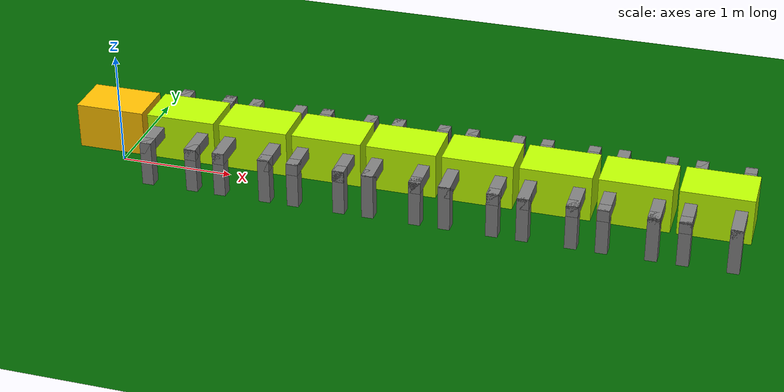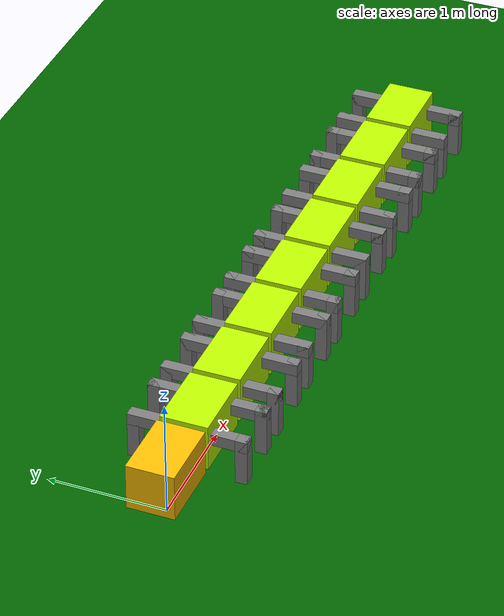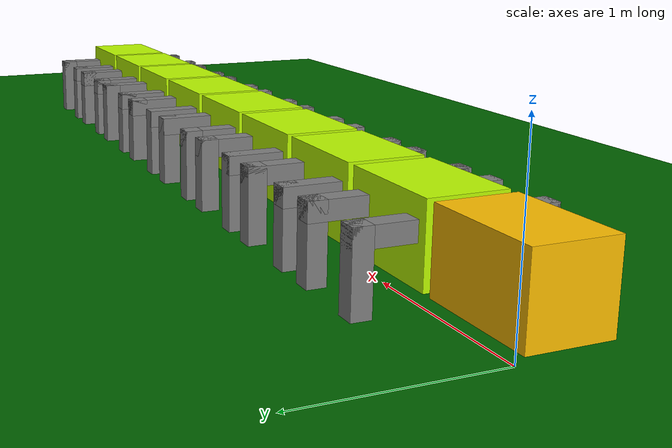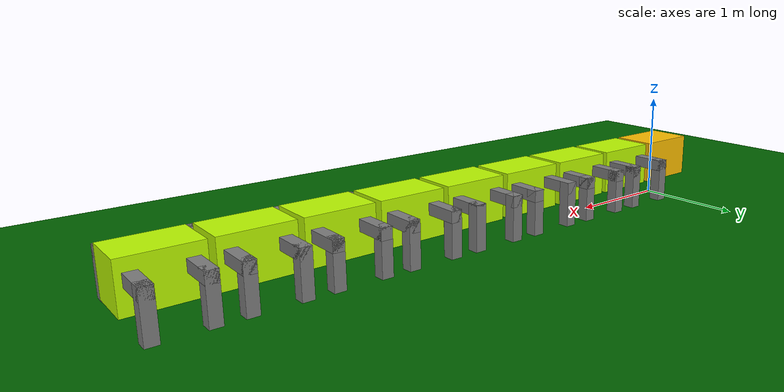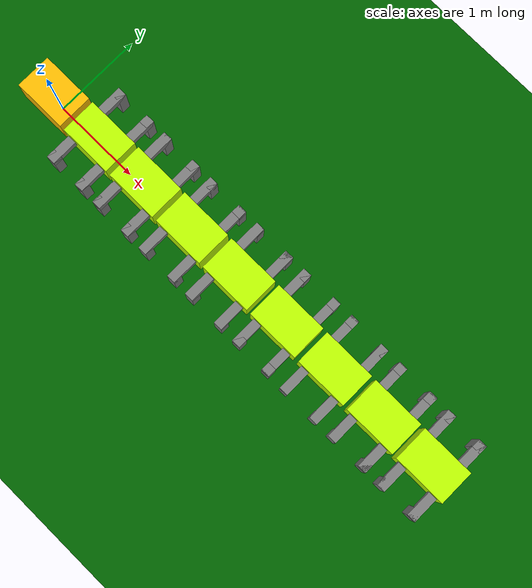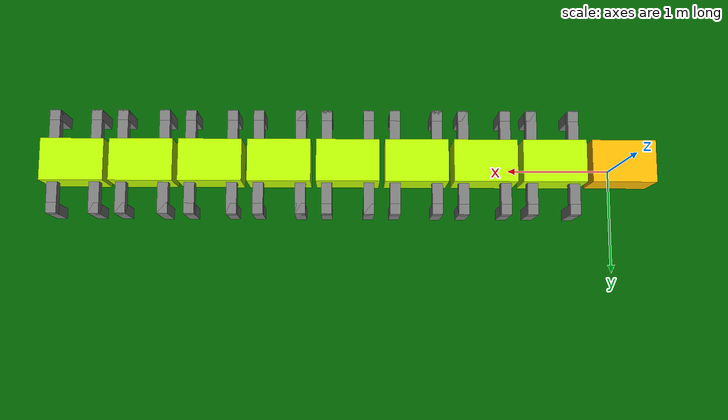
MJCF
<mujoco><option>timestep="0.1"</option><worldbody><light diffuse=".5 .5 .5" dir="0 0 1" pos="0 0 3" /><geom name="floor" rgba="0 .39 0 1" size="100 100 0.1" type="plane" /><body name="head"><freejoint name="root" /><geom name="head" pos="0 0 0.4" rgba="1 .75 0 1" size="0.3 0.2 0.2" type="box" /><body name="body0Body" pos="0.65 0 0.4"><geom rgba="0.75 1 0 1" size="0.3 0.2 0.2" type="box" /><joint axis="0 0 1" limited="true" name="body0Joint" pos="-0.15 0 0" range="-20 20" /><body name="body0leg1"><geom pos="0.2 0.35 0.05" size="0.05 0.15 0.05" type="box" /><joint axis="1 0 0" limited="true" name="body0leg1Hinge" pos="0 0 0.5" range="-10 10" /><geom pos="0.2 0.45 -.1" size="0.05 0.05 0.2" type="box" /></body><body name="body0leg11" /><body name="body0leg2"><geom pos="-0.2 0.35 0.05" size="0.05 0.15 0.05" type="box" /><joint axis="1 0 0" limited="true" name="body0leg2Hinge" pos="0 0 0.5" range="-10 10" /><geom pos="-0.2 0.45 -.1" size="0.05 0.05 0.2" type="box" /></body><body name="body0leg21" /><body name="body0leg3"><geom pos="0.2 -0.35 0.05" size="0.05 0.15 0.05" type="box" /><joint axis="1 0 0" limited="true" name="body0leg3Hinge" pos="0 0 0.5" range="-10 10" /><geom pos="0.2 -0.45 -.1" size="0.05 0.05 0.2" type="box" /></body><body name="body0leg31" /><body name="body0leg4"><geom pos="-0.2 -0.35 0.05" size="0.05 0.15 0.05" type="box" /><joint axis="1 0 0" limited="true" name="body0leg4Hinge" pos="0 0 0.5" range="-10 10" /><geom pos="-0.2 -0.45 -.1" size="0.05 0.05 0.2" type="box" /></body><body name="body0leg41" /></body><body name="body1Body" pos="1.3 0 0.4"><geom rgba="0.75 1 0 1" size="0.3 0.2 0.2" type="box" /><joint axis="0 0 1" limited="true" name="body1Joint" pos="-0.15 0 0" range="-20 20" /><body name="body1leg1"><geom pos="0.2 0.35 0.05" size="0.05 0.15 0.05" type="box" /><joint axis="1 0 0" limited="true" name="body1leg1Hinge" pos="0 0 0.5" range="-10 10" /><geom pos="0.2 0.45 -.1" size="0.05 0.05 0.2" type="box" /></body><body name="body1leg11" /><body name="body1leg2"><geom pos="-0.2 0.35 0.05" size="0.05 0.15 0.05" type="box" /><joint axis="1 0 0" limited="true" name="body1leg2Hinge" pos="0 0 0.5" range="-10 10" /><geom pos="-0.2 0.45 -.1" size="0.05 0.05 0.2" type="box" /></body><body name="body1leg21" /><body name="body1leg3"><geom pos="0.2 -0.35 0.05" size="0.05 0.15 0.05" type="box" /><joint axis="1 0 0" limited="true" name="body1leg3Hinge" pos="0 0 0.5" range="-10 10" /><geom pos="0.2 -0.45 -.1" size="0.05 0.05 0.2" type="box" /></body><body name="body1leg31" /><body name="body1leg4"><geom pos="-0.2 -0.35 0.05" size="0.05 0.15 0.05" type="box" /><joint axis="1 0 0" limited="true" name="body1leg4Hinge" pos="0 0 0.5" range="-10 10" /><geom pos="-0.2 -0.45 -.1" size="0.05 0.05 0.2" type="box" /></body><body name="body1leg41" /></body><body name="body2Body" pos="1.9500000000000002 0 0.4"><geom rgba="0.75 1 0 1" size="0.3 0.2 0.2" type="box" /><joint axis="0 0 1" limited="true" name="body2Joint" pos="-0.15 0 0" range="-20 20" /><body name="body2leg1"><geom pos="0.2 0.35 0.05" size="0.05 0.15 0.05" type="box" /><joint axis="1 0 0" limited="true" name="body2leg1Hinge" pos="0 0 0.5" range="-10 10" /><geom pos="0.2 0.45 -.1" size="0.05 0.05 0.2" type="box" /></body><body name="body2leg11" /><body name="body2leg2"><geom pos="-0.2 0.35 0.05" size="0.05 0.15 0.05" type="box" /><joint axis="1 0 0" limited="true" name="body2leg2Hinge" pos="0 0 0.5" range="-10 10" /><geom pos="-0.2 0.45 -.1" size="0.05 0.05 0.2" type="box" /></body><body name="body2leg21" /><body name="body2leg3"><geom pos="0.2 -0.35 0.05" size="0.05 0.15 0.05" type="box" /><joint axis="1 0 0" limited="true" name="body2leg3Hinge" pos="0 0 0.5" range="-10 10" /><geom pos="0.2 -0.45 -.1" size="0.05 0.05 0.2" type="box" /></body><body name="body2leg31" /><body name="body2leg4"><geom pos="-0.2 -0.35 0.05" size="0.05 0.15 0.05" type="box" /><joint axis="1 0 0" limited="true" name="body2leg4Hinge" pos="0 0 0.5" range="-10 10" /><geom pos="-0.2 -0.45 -.1" size="0.05 0.05 0.2" type="box" /></body><body name="body2leg41" /></body><body name="body3Body" pos="2.6 0 0.4"><geom rgba="0.75 1 0 1" size="0.3 0.2 0.2" type="box" /><joint axis="0 0 1" limited="true" name="body3Joint" pos="-0.15 0 0" range="-20 20" /><body name="body3leg1"><geom pos="0.2 0.35 0.05" size="0.05 0.15 0.05" type="box" /><joint axis="1 0 0" limited="true" name="body3leg1Hinge" pos="0 0 0.5" range="-10 10" /><geom pos="0.2 0.45 -.1" size="0.05 0.05 0.2" type="box" /></body><body name="body3leg11" /><body name="body3leg2"><geom pos="-0.2 0.35 0.05" size="0.05 0.15 0.05" type="box" /><joint axis="1 0 0" limited="true" name="body3leg2Hinge" pos="0 0 0.5" range="-10 10" /><geom pos="-0.2 0.45 -.1" size="0.05 0.05 0.2" type="box" /></body><body name="body3leg21" /><body name="body3leg3"><geom pos="0.2 -0.35 0.05" size="0.05 0.15 0.05" type="box" /><joint axis="1 0 0" limited="true" name="body3leg3Hinge" pos="0 0 0.5" range="-10 10" /><geom pos="0.2 -0.45 -.1" size="0.05 0.05 0.2" type="box" /></body><body name="body3leg31" /><body name="body3leg4"><geom pos="-0.2 -0.35 0.05" size="0.05 0.15 0.05" type="box" /><joint axis="1 0 0" limited="true" name="body3leg4Hinge" pos="0 0 0.5" range="-10 10" /><geom pos="-0.2 -0.45 -.1" size="0.05 0.05 0.2" type="box" /></body><body name="body3leg41" /></body><body name="body4Body" pos="3.25 0 0.4"><geom rgba="0.75 1 0 1" size="0.3 0.2 0.2" type="box" /><joint axis="0 0 1" limited="true" name="body4Joint" pos="-0.15 0 0" range="-20 20" /><body name="body4leg1"><geom pos="0.2 0.35 0.05" size="0.05 0.15 0.05" type="box" /><joint axis="1 0 0" limited="true" name="body4leg1Hinge" pos="0 0 0.5" range="-10 10" /><geom pos="0.2 0.45 -.1" size="0.05 0.05 0.2" type="box" /></body><body name="body4leg11" /><body name="body4leg2"><geom pos="-0.2 0.35 0.05" size="0.05 0.15 0.05" type="box" /><joint axis="1 0 0" limited="true" name="body4leg2Hinge" pos="0 0 0.5" range="-10 10" /><geom pos="-0.2 0.45 -.1" size="0.05 0.05 0.2" type="box" /></body><body name="body4leg21" /><body name="body4leg3"><geom pos="0.2 -0.35 0.05" size="0.05 0.15 0.05" type="box" /><joint axis="1 0 0" limited="true" name="body4leg3Hinge" pos="0 0 0.5" range="-10 10" /><geom pos="0.2 -0.45 -.1" size="0.05 0.05 0.2" type="box" /></body><body name="body4leg31" /><body name="body4leg4"><geom pos="-0.2 -0.35 0.05" size="0.05 0.15 0.05" type="box" /><joint axis="1 0 0" limited="true" name="body4leg4Hinge" pos="0 0 0.5" range="-10 10" /><geom pos="-0.2 -0.45 -.1" size="0.05 0.05 0.2" type="box" /></body><body name="body4leg41" /></body><body name="body5Body" pos="3.9000000000000004 0 0.4"><geom rgba="0.75 1 0 1" size="0.3 0.2 0.2" type="box" /><joint axis="0 0 1" limited="true" name="body5Joint" pos="-0.15 0 0" range="-20 20" /><body name="body5leg1"><geom pos="0.2 0.35 0.05" size="0.05 0.15 0.05" type="box" /><joint axis="1 0 0" limited="true" name="body5leg1Hinge" pos="0 0 0.5" range="-10 10" /><geom pos="0.2 0.45 -.1" size="0.05 0.05 0.2" type="box" /></body><body name="body5leg11" /><body name="body5leg2"><geom pos="-0.2 0.35 0.05" size="0.05 0.15 0.05" type="box" /><joint axis="1 0 0" limited="true" name="body5leg2Hinge" pos="0 0 0.5" range="-10 10" /><geom pos="-0.2 0.45 -.1" size="0.05 0.05 0.2" type="box" /></body><body name="body5leg21" /><body name="body5leg3"><geom pos="0.2 -0.35 0.05" size="0.05 0.15 0.05" type="box" /><joint axis="1 0 0" limited="true" name="body5leg3Hinge" pos="0 0 0.5" range="-10 10" /><geom pos="0.2 -0.45 -.1" size="0.05 0.05 0.2" type="box" /></body><body name="body5leg31" /><body name="body5leg4"><geom pos="-0.2 -0.35 0.05" size="0.05 0.15 0.05" type="box" /><joint axis="1 0 0" limited="true" name="body5leg4Hinge" pos="0 0 0.5" range="-10 10" /><geom pos="-0.2 -0.45 -.1" size="0.05 0.05 0.2" type="box" /></body><body name="body5leg41" /></body><body name="body6Body" pos="4.55 0 0.4"><geom rgba="0.75 1 0 1" size="0.3 0.2 0.2" type="box" /><joint axis="0 0 1" limited="true" name="body6Joint" pos="-0.15 0 0" range="-20 20" /><body name="body6leg1"><geom pos="0.2 0.35 0.05" size="0.05 0.15 0.05" type="box" /><joint axis="1 0 0" limited="true" name="body6leg1Hinge" pos="0 0 0.5" range="-10 10" /><geom pos="0.2 0.45 -.1" size="0.05 0.05 0.2" type="box" /></body><body name="body6leg11" /><body name="body6leg2"><geom pos="-0.2 0.35 0.05" size="0.05 0.15 0.05" type="box" /><joint axis="1 0 0" limited="true" name="body6leg2Hinge" pos="0 0 0.5" range="-10 10" /><geom pos="-0.2 0.45 -.1" size="0.05 0.05 0.2" type="box" /></body><body name="body6leg21" /><body name="body6leg3"><geom pos="0.2 -0.35 0.05" size="0.05 0.15 0.05" type="box" /><joint axis="1 0 0" limited="true" name="body6leg3Hinge" pos="0 0 0.5" range="-10 10" /><geom pos="0.2 -0.45 -.1" size="0.05 0.05 0.2" type="box" /></body><body name="body6leg31" /><body name="body6leg4"><geom pos="-0.2 -0.35 0.05" size="0.05 0.15 0.05" type="box" /><joint axis="1 0 0" limited="true" name="body6leg4Hinge" pos="0 0 0.5" range="-10 10" /><geom pos="-0.2 -0.45 -.1" size="0.05 0.05 0.2" type="box" /></body><body name="body6leg41" /></body><body name="body7Body" pos="5.2 0 0.4"><geom rgba="0.75 1 0 1" size="0.3 0.2 0.2" type="box" /><joint axis="0 0 1" limited="true" name="body7Joint" pos="-0.15 0 0" range="-20 20" /><body name="body7leg1"><geom pos="0.2 0.35 0.05" size="0.05 0.15 0.05" type="box" /><joint axis="1 0 0" limited="true" name="body7leg1Hinge" pos="0 0 0.5" range="-10 10" /><geom pos="0.2 0.45 -.1" size="0.05 0.05 0.2" type="box" /></body><body name="body7leg11" /><body name="body7leg2"><geom pos="-0.2 0.35 0.05" size="0.05 0.15 0.05" type="box" /><joint axis="1 0 0" limited="true" name="body7leg2Hinge" pos="0 0 0.5" range="-10 10" /><geom pos="-0.2 0.45 -.1" size="0.05 0.05 0.2" type="box" /></body><body name="body7leg21" /><body name="body7leg3"><geom pos="0.2 -0.35 0.05" size="0.05 0.15 0.05" type="box" /><joint axis="1 0 0" limited="true" name="body7leg3Hinge" pos="0 0 0.5" range="-10 10" /><geom pos="0.2 -0.45 -.1" size="0.05 0.05 0.2" type="box" /></body><body name="body7leg31" /><body name="body7leg4"><geom pos="-0.2 -0.35 0.05" size="0.05 0.15 0.05" type="box" /><joint axis="1 0 0" limited="true" name="body7leg4Hinge" pos="0 0 0.5" range="-10 10" /><geom pos="-0.2 -0.45 -.1" size="0.05 0.05 0.2" type="box" /></body><body name="body7leg41" /></body></body></worldbody><actuator><motor gear="10" joint="body0Joint" name="body0Hinge" /><motor gear="100" joint="body0leg1Hinge" name="body0leg1Hinge" /><motor gear="100" joint="body0leg2Hinge" name="body0leg2Hinge" /><motor gear="100" joint="body0leg3Hinge" name="body0leg3Hinge" /><motor gear="100" joint="body0leg4Hinge" name="body0leg4Hinge" /><motor gear="10" joint="body1Joint" name="body1Hinge" /><motor gear="100" joint="body1leg1Hinge" name="body1leg1Hinge" /><motor gear="100" joint="body1leg2Hinge" name="body1leg2Hinge" /><motor gear="100" joint="body1leg3Hinge" name="body1leg3Hinge" /><motor gear="100" joint="body1leg4Hinge" name="body1leg4Hinge" /><motor gear="10" joint="body2Joint" name="body2Hinge" /><motor gear="100" joint="body2leg1Hinge" name="body2leg1Hinge" /><motor gear="100" joint="body2leg2Hinge" name="body2leg2Hinge" /><motor gear="100" joint="body2leg3Hinge" name="body2leg3Hinge" /><motor gear="100" joint="body2leg4Hinge" name="body2leg4Hinge" /><motor gear="10" joint="body3Joint" name="body3Hinge" /><motor gear="100" joint="body3leg1Hinge" name="body3leg1Hinge" /><motor gear="100" joint="body3leg2Hinge" name="body3leg2Hinge" /><motor gear="100" joint="body3leg3Hinge" name="body3leg3Hinge" /><motor gear="100" joint="body3leg4Hinge" name="body3leg4Hinge" /><motor gear="10" joint="body4Joint" name="body4Hinge" /><motor gear="100" joint="body4leg1Hinge" name="body4leg1Hinge" /><motor gear="100" joint="body4leg2Hinge" name="body4leg2Hinge" /><motor gear="100" joint="body4leg3Hinge" name="body4leg3Hinge" /><motor gear="100" joint="body4leg4Hinge" name="body4leg4Hinge" /><motor gear="10" joint="body5Joint" name="body5Hinge" /><motor gear="100" joint="body5leg1Hinge" name="body5leg1Hinge" /><motor gear="100" joint="body5leg2Hinge" name="body5leg2Hinge" /><motor gear="100" joint="body5leg3Hinge" name="body5leg3Hinge" /><motor gear="100" joint="body5leg4Hinge" name="body5leg4Hinge" /><motor gear="10" joint="body6Joint" name="body6Hinge" /><motor gear="100" joint="body6leg1Hinge" name="body6leg1Hinge" /><motor gear="100" joint="body6leg2Hinge" name="body6leg2Hinge" /><motor gear="100" joint="body6leg3Hinge" name="body6leg3Hinge" /><motor gear="100" joint="body6leg4Hinge" name="body6leg4Hinge" /><motor gear="10" joint="body7Joint" name="body7Hinge" /><motor gear="100" joint="body7leg1Hinge" name="body7leg1Hinge" /><motor gear="100" joint="body7leg2Hinge" name="body7leg2Hinge" /><motor gear="100" joint="body7leg3Hinge" name="body7leg3Hinge" /><motor gear="100" joint="body7leg4Hinge" name="body7leg4Hinge" /></actuator></mujoco>
